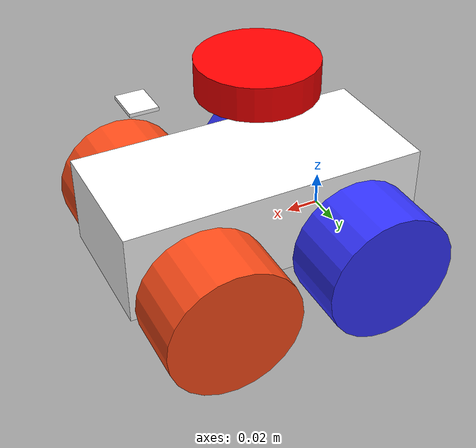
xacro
<?xml version="1.0"?>
<robot xmlns:xacro="http://www.ros.org/wiki/xacro" name="waveshare_rover">
    <xacro:arg name="prefix" default="" />
    <xacro:include filename="$(find waveshare_real)/robot.urdf.xacro"/>
    <xacro:include filename="$(find waveshare_real)/waveshare_real.ros2_control.xacro" />
    <xacro:include filename="$(find waveshare_real)/lidar.xacro" />
    <xacro:include filename="$(find waveshare_real)/imu.xacro" />

    <xacro:waveshare_real prefix="$(arg prefix)" />

    <xacro:waveshare_real_ros2_control name="waveshare_real" prefix="$(arg prefix)" />

</robot>

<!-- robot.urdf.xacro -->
<robot xmlns:xacro="http://www.ros.org/wiki/xacro">

    <xacro:include filename="inertial_macros.xacro"/>
    <xacro:macro name="waveshare_real" params="prefix">

        <material name="white">
            <color rgba="1 1 1 1"/>
        </material>

        <material name="blue">
            <color rgba="0.2 0.2 1 1"/>
        </material>

        <material name="orange">
            <color rgba="1 0.3 0.1 1"/>
        </material>

        <material name="red">
            <color rgba="1 0 0 1"/>
        </material>

        <link name="${prefix}base_link">
        </link>

        <link name="${prefix}base_footprint">
        </link>

        <joint name="${prefix}base_footprint_joint" type="fixed">
            <parent link="${prefix}base_link"/>
            <child link="${prefix}base_footprint"/>
            <origin xyz="0 0 0" rpy="0 0 0"/>
        </joint>

        <joint name="${prefix}chassis_joint" type="fixed">
            <parent link="${prefix}base_link"/>
            <child link="${prefix}chassis_link"/>
            <origin xyz="-0.043 0.0 -0.0063"/>
        </joint>

        <link name="${prefix}chassis_link">
            <visual>
                <origin xyz="0.0915 0.0 0.02735"/>
                <geometry>
                    <box size="0.183 0.083 0.0547"/>
                </geometry>
                <material name="white"/>
            </visual>
            <collision>
                <origin xyz="0.0915 0 0.02735"/>
                <geometry>
                    <box size="0.183 0.083 0.0547"/>
                </geometry>
            </collision>
            <xacro:inertial_box mass="0.66" x="0.183" y="0.083" z="0.0547">
                <origin xyz="0.0915 0 0.02735" rpy="0 0 0"/>
            </xacro:inertial_box>
        </link>

        <link name="${prefix}rlw_link">
            <visual>
                <geometry>
                    <cylinder length="0.0425" radius="0.04"/>
                </geometry>
                <material name="blue"/>
            </visual>
            <collision>
                <geometry>
                    <cylinder radius="0.04" length="0.0425"/>
                </geometry>
            </collision>
            <xacro:inertial_cylinder mass="0.05" length="0.0425" radius="0.04">
                <origin xyz="0 0 0" rpy="0 0 0"/>
            </xacro:inertial_cylinder>
        </link>

        <joint name="${prefix}rlw_joint" type="continuous">
            <parent link="${prefix}base_link"/>
            <child link="${prefix}rlw_link"/>
            <origin xyz="0.0 0.06275 0.0" rpy="-1.5708 0 0"/>
            <axis xyz="0 0 1"/>
            <dynamics damping="0.2"/>
        </joint>

        <link name="${prefix}rrw_link">
            <visual>
                <geometry>
                    <cylinder length="0.0425" radius="0.04"/>
                </geometry>
                <material name="blue"/>
            </visual>
            <collision>
                <geometry>
                    <cylinder radius="0.04" length="0.0425"/>
                </geometry>
            </collision>
            <xacro:inertial_cylinder mass="0.05" length="0.0425" radius="0.04">
                <origin xyz="0 0 0" rpy="0 0 0"/>
            </xacro:inertial_cylinder>
        </link>

        <joint name="${prefix}rrw_joint" type="continuous">
            <parent link="${prefix}base_link"/>
            <child link="${prefix}rrw_link"/>
            <origin xyz="0.0 -0.06275 0.0" rpy="1.5708 0 0"/>
            <axis xyz="0 0 -1"/>
            <dynamics damping="0.2"/>
        </joint>

        <link name="${prefix}flw_link">
            <visual>
                <geometry>
                    <cylinder length="0.0425" radius="0.04"/>
                </geometry>
                <material name="orange"/>
            </visual>
            <collision>
                <geometry>
                    <cylinder radius="0.04" length="0.0425"/>
                </geometry>
            </collision>
            <xacro:inertial_cylinder mass="0.05" length="0.0425" radius="0.04">
                <origin xyz="0 0 0" rpy="0 0 0"/>
            </xacro:inertial_cylinder>
        </link>

        <joint name="${prefix}flw_joint" type="continuous">
            <parent link="${prefix}base_link"/>
            <child link="${prefix}flw_link"/>
            <origin xyz="0.097 0.06275 0.0" rpy="-1.5708 0 0"/>
            <axis xyz="0 0 1"/>
            <dynamics damping="0.2"/>
        </joint>

        <link name="${prefix}frw_link">
            <visual>
                <geometry>
                    <cylinder length="0.0425" radius="0.04"/>
                </geometry>
                <material name="orange"/>
            </visual>
            <collision>
                <geometry>
                    <cylinder radius="0.04" length="0.0425"/>
                </geometry>
            </collision>
            <xacro:inertial_cylinder mass="0.05" length="0.0425" radius="0.04">
                <origin xyz="0 0 0" rpy="0 0 0"/>
            </xacro:inertial_cylinder>
        </link>

        <joint name="${prefix}frw_joint" type="continuous">
            <parent link="${prefix}base_link"/>
            <child link="${prefix}frw_link"/>
            <origin xyz="0.097 -0.06275 0.0" rpy="1.5708 0 0"/>
            <axis xyz="0 0 -1"/>
            <dynamics damping="0.2"/>
        </joint>
    </xacro:macro>
</robot>

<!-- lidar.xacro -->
<robot xmlns:xacro="http://www.ros.org/wiki/xacro">
    <joint name="lidar_joint" type="fixed">
        <parent link="base_link"/>
        <child link="lidar_link"/>
        <origin xyz="0.042 0.0 0.1" rpy="0 0 3.14159"/>
    </joint>

    <link name="lidar_link">
        <visual>
            <geometry>
                <cylinder length="0.02" radius="0.035"/>
            </geometry>
            <material name="red"/>
        </visual>
        <collision>
            <geometry>
                <cylinder radius="0.04" length="0.0425"/>
            </geometry>
        </collision>
        <xacro:inertial_cylinder mass="0.05" length="0.0425" radius="0.04">
            <origin xyz="0 0 0" rpy="0 0 0"/>
        </xacro:inertial_cylinder>
    </link>
</robot>

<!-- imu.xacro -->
<robot xmlns:xacro="http://www.ros.org/wiki/xacro">
    <joint name="imu_joint" type="fixed">
        <parent link="base_link"/>
        <child link="imu_link"/>
        <origin xyz="0.112 0.0 0.1" rpy="0 0 3.14159"/>
    </joint>

    <link name="imu_link">
        <visual>
            <geometry>
                <box size="0.016 0.021 0.002"/>
            </geometry>
            <material name="white"/>
        </visual>
        <collision>
            <origin xyz="0.0915 0 0.02735"/>
            <geometry>
                <box size="0.183 0.083 0.0547"/>
            </geometry>
        </collision>
        <xacro:inertial_box mass="0.001" x="0.183" y="0.083" z="0.0547">
            <origin xyz="0.0915 0 0.02735" rpy="0 0 0"/>
        </xacro:inertial_box>
    </link>
</robot>
